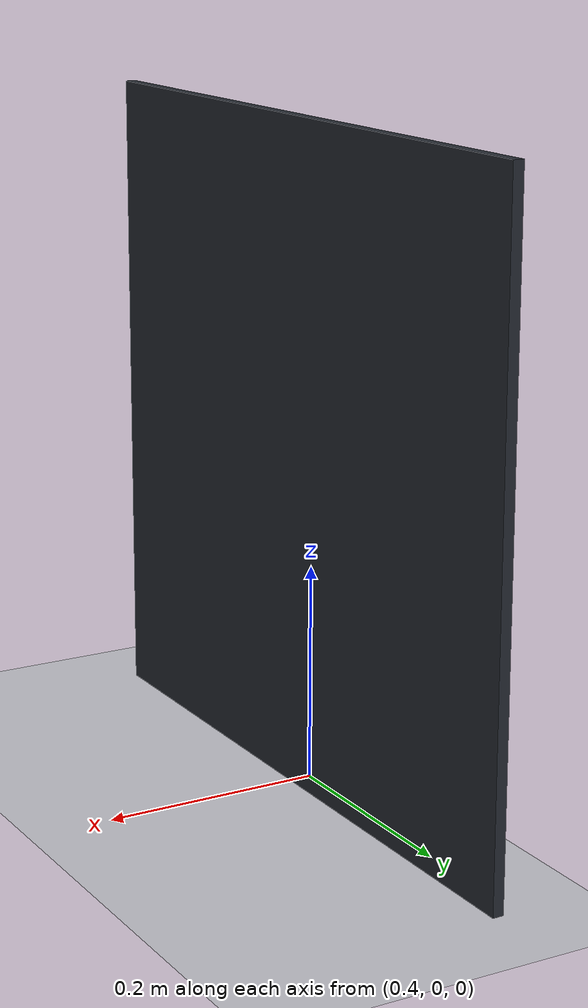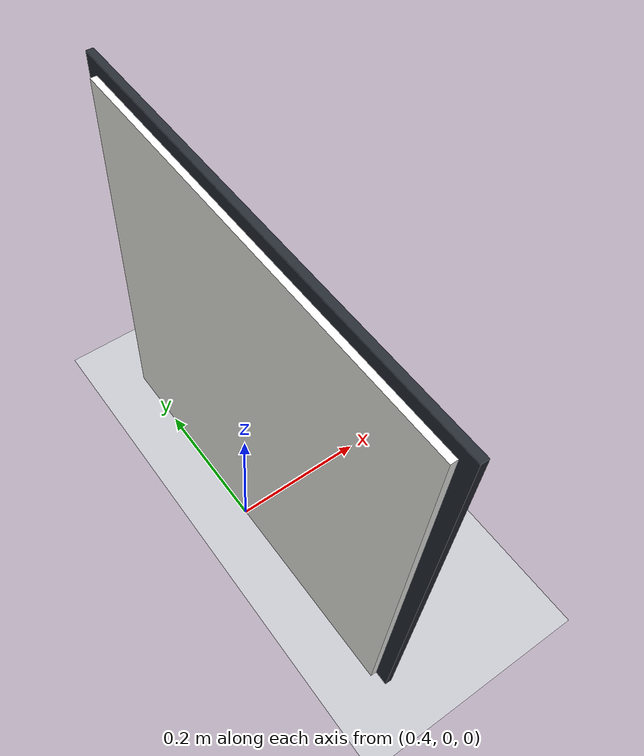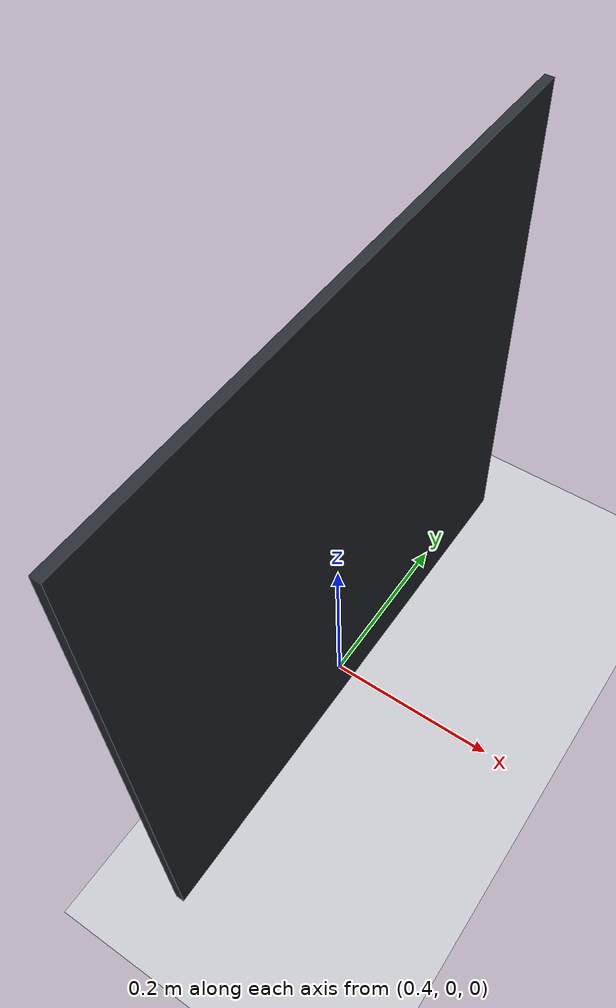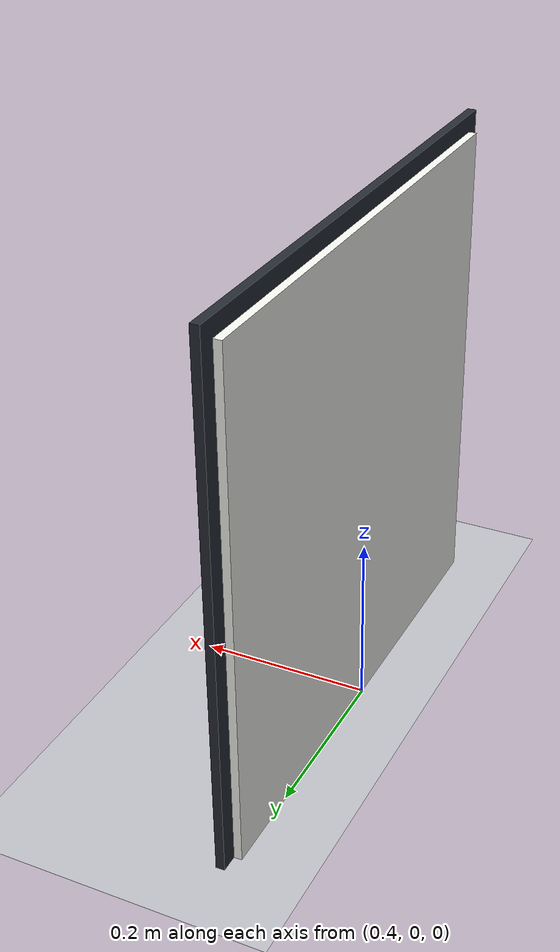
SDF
<?xml version="1.0" ?>
<sdf version="1.6">
  <world name="pen_board">
    <physics name="1ms" type="ignored">
      <max_step_size>0.001</max_step_size>
      <real_time_factor>1.0</real_time_factor>
    </physics>
    <plugin filename="ignition-gazebo-physics-system" name="gz::sim::systems::Physics"/>
    <plugin filename="ignition-gazebo-user-commands-system" name="gz::sim::systems::UserCommands"/>
    <plugin filename="ignition-gazebo-scene-broadcaster-system" name="gz::sim::systems::SceneBroadcaster"/>
    <plugin filename="ignition-gazebo-contact-system" name="gz::sim::systems::Contact"/>

    <light type="directional" name="sun">
      <cast_shadows>true</cast_shadows>
      <pose>0 0 10 0 0 0</pose>
      <diffuse>0.9 0.9 0.9 1</diffuse>
      <specular>0.2 0.2 0.2 1</specular>
      <attenuation>
        <range>1000</range>
        <constant>0.9</constant>
        <linear>0.01</linear>
        <quadratic>0.001</quadratic>
      </attenuation>
      <direction>-0.5 0.1 -0.9</direction>
    </light>

    <model name="ground_plane">
      <static>true</static>
      <link name="link">
        <collision name="collision">
          <geometry><plane><normal>0 0 1</normal><size>100 100</size></plane></geometry>
        </collision>
        <visual name="visual">
          <geometry><plane><normal>0 0 1</normal><size>100 100</size></plane></geometry>
          <material>
            <ambient>0.75 0.75 0.78 1</ambient>
            <diffuse>0.75 0.75 0.78 1</diffuse>
            <specular>0.3 0.3 0.3 1</specular>
          </material>
        </visual>
      </link>
    </model>

    <!-- Mat truoc cua bang nam tai x = 0.40 m, trung voi tham so plane_x trong canvas.yaml. -->
    <model name="drawing_board">
      <static>true</static>
      <pose>0.406 0 0.28 0 0 0</pose>
      <link name="board">
        <visual name="surface">
          <geometry><box><size>0.012 0.60 0.60</size></box></geometry>
          <material>
            <ambient>0.97 0.97 0.95 1</ambient>
            <diffuse>0.97 0.97 0.95 1</diffuse>
            <specular>0.1 0.1 0.1 1</specular>
          </material>
        </visual>
        <visual name="frame">
          <pose>0.008 0 0 0 0 0</pose>
          <geometry><box><size>0.010 0.64 0.64</size></box></geometry>
          <material>
            <ambient>0.15 0.17 0.20 1</ambient>
            <diffuse>0.15 0.17 0.20 1</diffuse>
          </material>
        </visual>
      </link>
    </model>
  </world>
</sdf>
